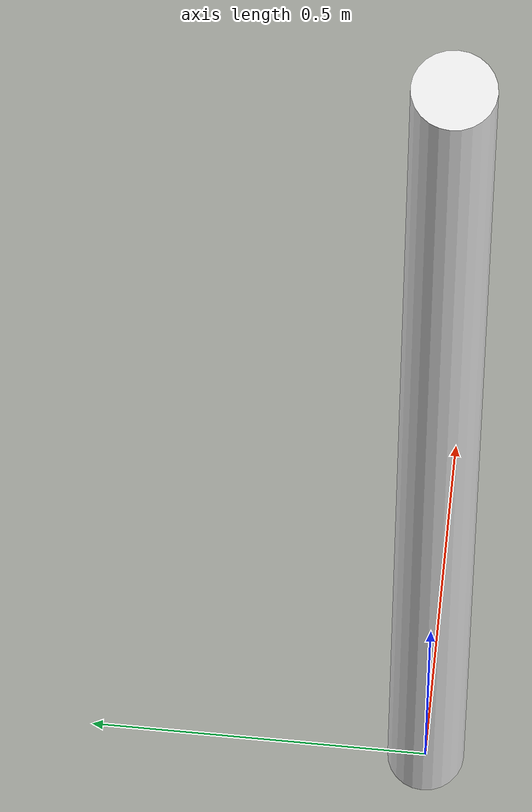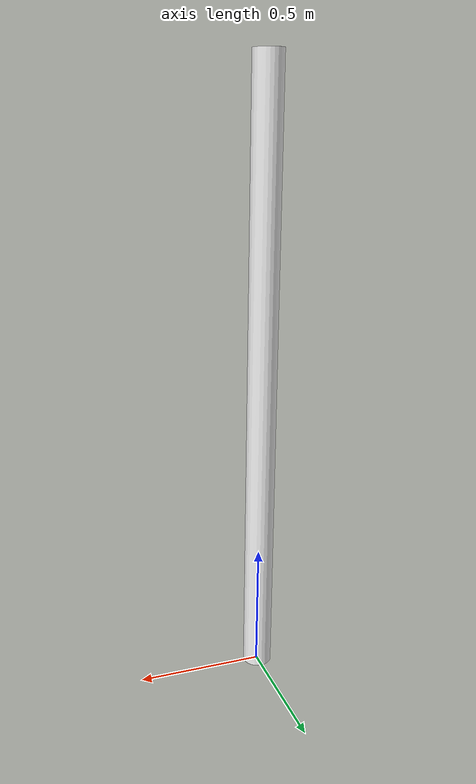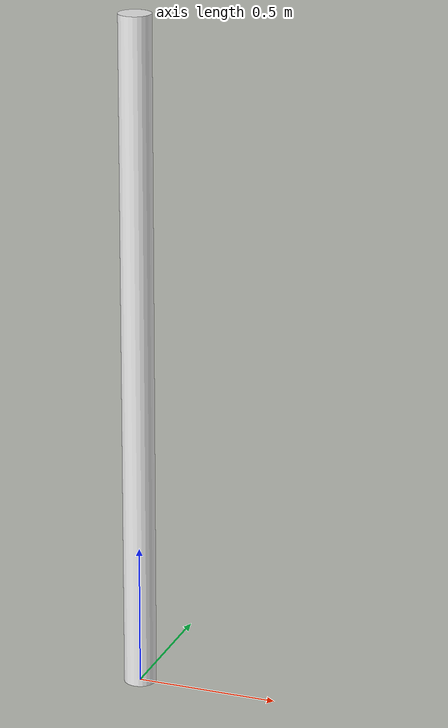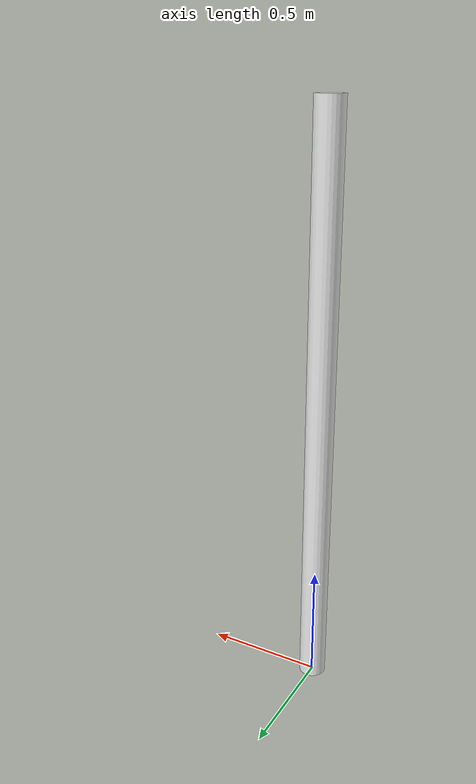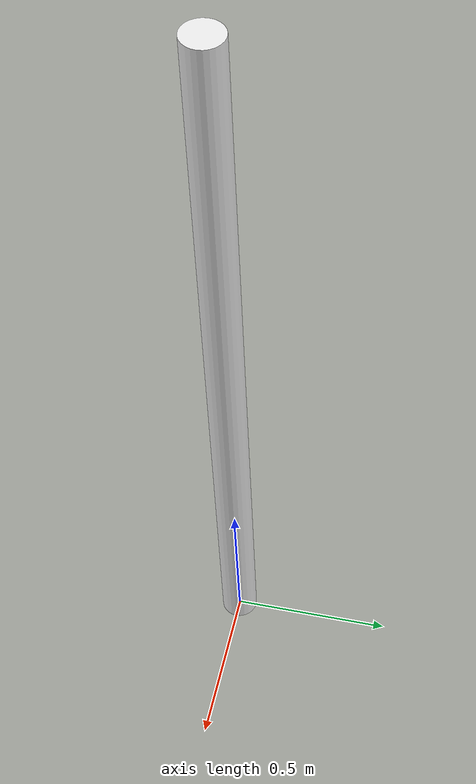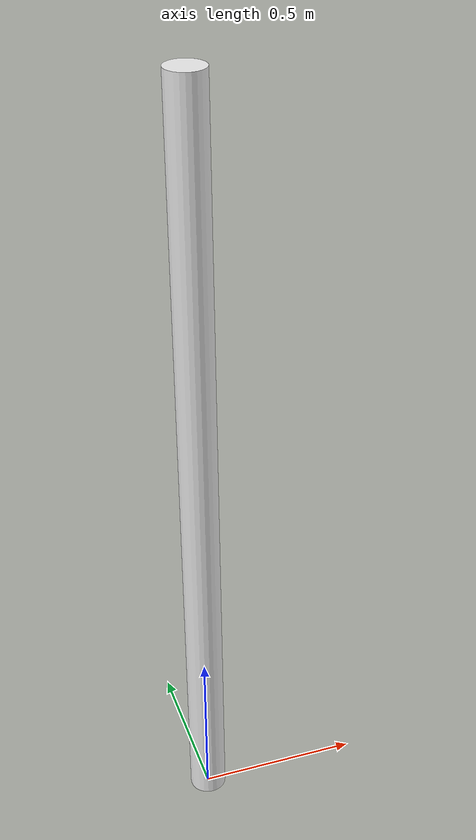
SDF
<?xml version="1.0" ?>
<sdf version="1.5">
  <model name="AIGC2_pole_10cm">
    <static>true</static>
    <link name="link">
      <pose>0 0 1.2 0 0 0</pose>
      <collision name="collision">
        <geometry>
            <cylinder>
              <radius>.057</radius>
              <length>2.4</length>
            </cylinder>
        </geometry>
      </collision>
      <visual name="visual">
        <cast_shadows>true</cast_shadows>
        <geometry>
            <cylinder>
              <radius>.057</radius>
              <length>2.4</length>
            </cylinder>
        </geometry>
        <material>
          <script>
            <name>Gazebo/White</name>
            <uri>file://media/materials/scripts/gazebo.material</uri>
          </script>
        </material>
      </visual>
    </link>
  </model>
</sdf>
